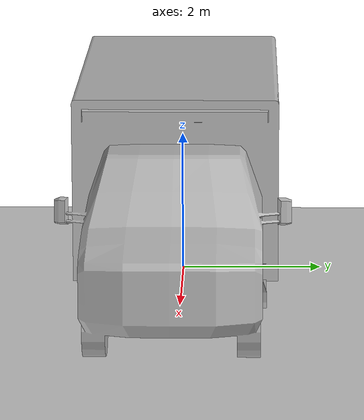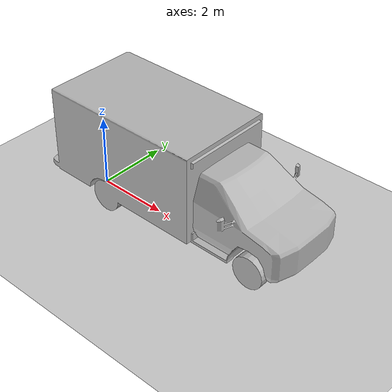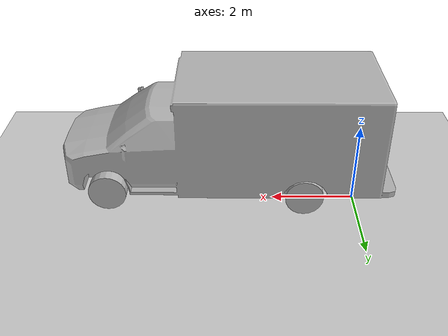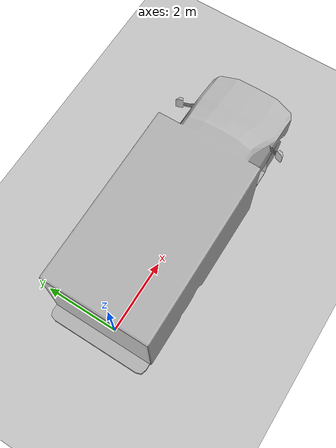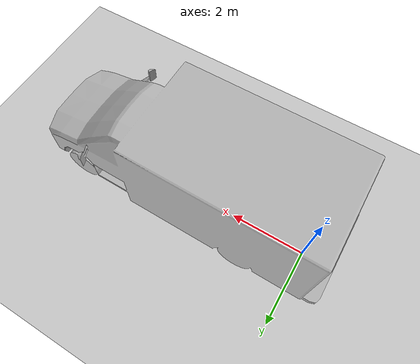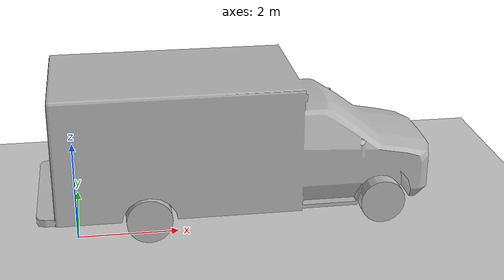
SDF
<?xml version="1.0" ?>
<sdf version="1.5">
  <world name="default">
    <!-- A global light source -->
    <include>
      <uri>model://sun</uri>
    </include>
    <!-- A ground plane -->
    <include>
      <uri>model://ground_plane</uri>
    </include>

<!-- launch ambulance model with the mover plugin -->
  <model name="ambulance">
      <pose>3 0 0.5 0 0 1.57</pose>
      <link name="link">
        <collision name="collision">
        <geometry>
          <mesh>
            <scale>0.0254 0.0254 0.0254</scale>
            <uri>model://ambulance/meshes/ambulance.obj</uri>
          </mesh>
        </geometry>
      </collision>
        <visual name="visual">
        <geometry>
          <mesh>
            <scale>0.0254 0.0254 0.0254</scale>
            <uri>model://ambulance/meshes/ambulance.obj</uri>
          </mesh>
        </geometry>
      </visual>
      </link>
      <plugin name="model_mover" filename="libmodel_mover.so"/>
         <plugin name="novatel_gps_sim" filename="libgazebo_gps_plugin.so">
    <alwaysOn>1</alwaysOn>
    <updateRate>10.0</updateRate>
    <topicName>fix</topicName>
    <velocityTopicName>fix_velocity</velocityTopicName>
    <drift>5.0 5.0 5.0</drift>
    <gaussianNoise>0.1 0.1 0.1</gaussianNoise>
    <velocityDrift>0 0 0</velocityDrift>
    <velocityGaussianNoise>0.1 0.1 0.1</velocityGaussianNoise>
  </plugin>
    </model>

<!-- define physics -->
    <physics name='default_physics' default='0' type='ode'>
      <gravity>0 0 -9.8066</gravity>
      <ode>
        <solver>
          <type>quick</type>
          <iters>10</iters>
          <sor>1.3</sor>
          <use_dynamic_moi_rescaling>0</use_dynamic_moi_rescaling>
        </solver>
        <constraints>
          <cfm>0</cfm>
          <erp>0.2</erp>
          <contact_max_correcting_vel>100</contact_max_correcting_vel>
          <contact_surface_layer>0.001</contact_surface_layer>
        </constraints>
      </ode>
      <max_step_size>0.004</max_step_size>
      <real_time_factor>1</real_time_factor>
      <real_time_update_rate>250</real_time_update_rate>
      <magnetic_field>6.0e-6 2.3e-5 -4.2e-5</magnetic_field>
    </physics>
    <scene>
      <sky>
        <clouds>
          <speed>8</speed>
        </clouds>
      </sky>
    </scene>

  </world>
</sdf>
